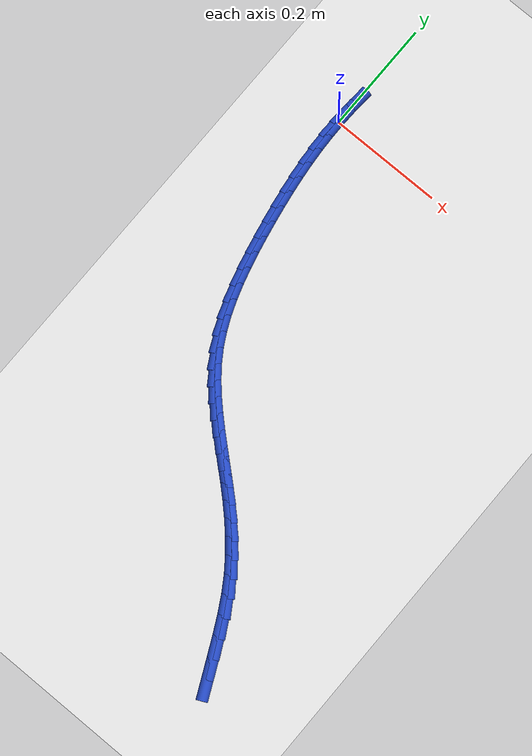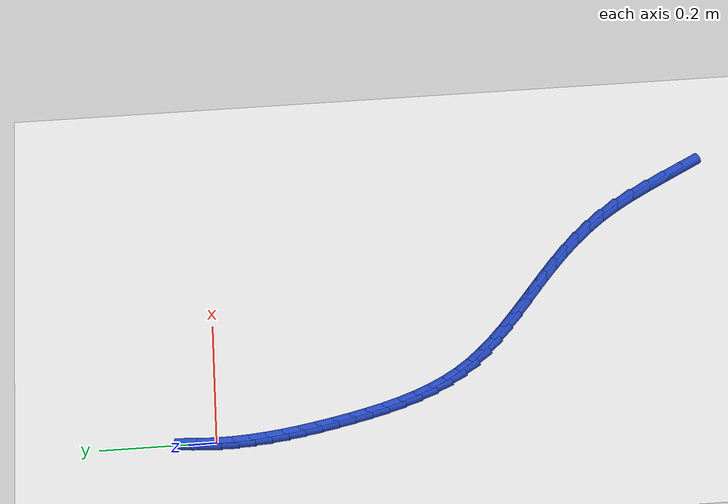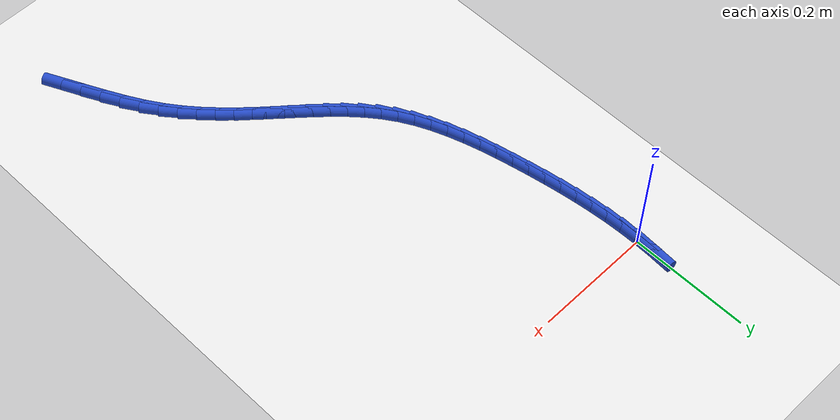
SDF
<sdf version="1.6">
 <world name="default">
  <model name="ground_plane">
   <static>1</static>
   <link name="link">
    <collision name="collision">
     <geometry><plane><normal>0 0 1</normal><size>100 100</size></plane></geometry>
     <surface><friction><ode><mu>100</mu><mu2>50</mu2></ode></friction></surface>
    </collision>
    <visual name="visual">
     <cast_shadows>0</cast_shadows>
     <geometry><plane><normal>0 0 1</normal><size>100 100</size></plane></geometry>
     <material>
      <script><uri>file://media/materials/scripts/gazebo.material</uri><name>Gazebo/WhiteGlow</name></script>
     </material>
    </visual>
   </link>
  </model>
  <model name="line">
   <link name="link_0">
    <pose>-2.6020852139652106e-18 -1.3877787807814457e-17 0.01 0 1.57 1.5410836594543111</pose>
    <collision name="collision">
     <geometry><cylinder><radius>0.01</radius><length>0.08</length></cylinder></geometry>
    </collision>
    <visual name="visual">
     <material>
      <script><name>Gazebo/Blue</name><uri>file://media/materials/scripts/gazebo.material</uri></script>
     </material>
     <geometry><cylinder><radius>0.01</radius><length>0.08</length></cylinder></geometry>
    </visual>
   </link>
   <link name="link_1">
    <pose>0.0008448784195982768 0.028426588691219702 0.01 0 1.57 1.5070297732293532</pose>
    <collision name="collision">
     <geometry><cylinder><radius>0.01</radius><length>0.08</length></cylinder></geometry>
    </collision>
    <visual name="visual">
     <material>
      <script><name>Gazebo/Blue</name><uri>file://media/materials/scripts/gazebo.material</uri></script>
     </material>
     <geometry><cylinder><radius>0.01</radius><length>0.08</length></cylinder></geometry>
    </visual>
   </link>
   <link name="link_257">
    <pose>0.42457362475489957 -0.8352668863654452 0.01 0 1.57 -1.1257410366463538</pose>
    <collision name="collision">
     <geometry><cylinder><radius>0.01</radius><length>0.08</length></cylinder></geometry>
    </collision>
    <visual name="visual">
     <material>
      <script><name>Gazebo/Blue</name><uri>file://media/materials/scripts/gazebo.material</uri></script>
     </material>
     <geometry><cylinder><radius>0.01</radius><length>0.08</length></cylinder></geometry>
    </visual>
   </link>
   <link name="link_258">
    <pose>0.4099756272368853 -0.8046612591156584 0.01 0 1.57 -1.1204709304202711</pose>
    <collision name="collision">
     <geometry><cylinder><radius>0.01</radius><length>0.08</length></cylinder></geometry>
    </collision>
    <visual name="visual">
     <material>
      <script><name>Gazebo/Blue</name><uri>file://media/materials/scripts/gazebo.material</uri></script>
     </material>
     <geometry><cylinder><radius>0.01</radius><length>0.08</length></cylinder></geometry>
    </visual>
   </link>
   <link name="link_259">
    <pose>0.3951386551238968 -0.7739718929973554 0.01 0 1.57 -1.0986591413629496</pose>
    <collision name="collision">
     <geometry><cylinder><radius>0.01</radius><length>0.08</length></cylinder></geometry>
    </collision>
    <visual name="visual">
     <material>
      <script><name>Gazebo/Blue</name><uri>file://media/materials/scripts/gazebo.material</uri></script>
     </material>
     <geometry><cylinder><radius>0.01</radius><length>0.08</length></cylinder></geometry>
    </visual>
   </link>
   <link name="link_260">
    <pose>0.37974494584852514 -0.7438270105221809 0.01 0 1.57 -1.059158122594759</pose>
    <collision name="collision">
     <geometry><cylinder><radius>0.01</radius><length>0.08</length></cylinder></geometry>
    </collision>
    <visual name="visual">
     <material>
      <script><name>Gazebo/Blue</name><uri>file://media/materials/scripts/gazebo.material</uri></script>
     </material>
     <geometry><cylinder><radius>0.01</radius><length>0.08</length></cylinder></geometry>
    </visual>
   </link>
   <link name="link_261">
    <pose>0.36347673684336185 -0.7148548342017805 0.01 0 1.57 -0.9999563781915298</pose>
    <collision name="collision">
     <geometry><cylinder><radius>0.01</radius><length>0.08</length></cylinder></geometry>
    </collision>
    <visual name="visual">
     <material>
      <script><name>Gazebo/Blue</name><uri>file://media/materials/scripts/gazebo.material</uri></script>
     </material>
     <geometry><cylinder><radius>0.01</radius><length>0.08</length></cylinder></geometry>
    </visual>
   </link>
   <link name="link_262">
    <pose>0.34602230000282297 -0.6876737674294692 0.01 0 1.57 -0.9309695407657109</pose>
    <collision name="collision">
     <geometry><cylinder><radius>0.01</radius><length>0.08</length></cylinder></geometry>
    </collision>
    <visual name="visual">
     <material>
      <script><name>Gazebo/Blue</name><uri>file://media/materials/scripts/gazebo.material</uri></script>
     </material>
     <geometry><cylinder><radius>0.01</radius><length>0.08</length></cylinder></geometry>
    </visual>
   </link>
   <link name="link_263">
    <pose>0.32730307725179414 -0.6625228054281551 0.01 0 1.57 -0.8689633555907991</pose>
    <collision name="collision">
     <geometry><cylinder><radius>0.01</radius><length>0.08</length></cylinder></geometry>
    </collision>
    <visual name="visual">
     <material>
      <script><name>Gazebo/Blue</name><uri>file://media/materials/scripts/gazebo.material</uri></script>
     </material>
     <geometry><cylinder><radius>0.01</radius><length>0.08</length></cylinder></geometry>
    </visual>
   </link>
   <link name="link_264">
    <pose>0.30754258787850075 -0.6391494110419286 0.01 0 1.57 -0.8165608871772688</pose>
    <collision name="collision">
     <geometry><cylinder><radius>0.01</radius><length>0.08</length></cylinder></geometry>
    </collision>
    <visual name="visual">
     <material>
      <script><name>Gazebo/Blue</name><uri>file://media/materials/scripts/gazebo.material</uri></script>
     </material>
     <geometry><cylinder><radius>0.01</radius><length>0.08</length></cylinder></geometry>
    </visual>
   </link>
   <link name="link_265">
    <pose>0.2869844573605177 -0.6172683308498464 0.01 0 1.57 -0.7749135758349872</pose>
    <collision name="collision">
     <geometry><cylinder><radius>0.01</radius><length>0.08</length></cylinder></geometry>
    </collision>
    <visual name="visual">
     <material>
      <script><name>Gazebo/Blue</name><uri>file://media/materials/scripts/gazebo.material</uri></script>
     </material>
     <geometry><cylinder><radius>0.01</radius><length>0.08</length></cylinder></geometry>
    </visual>
   </link>
   <link name="link_266">
    <pose>0.2658723111754182 -0.5965943114309642 0.01 0 1.57 -0.7448536788825162</pose>
    <collision name="collision">
     <geometry><cylinder><radius>0.01</radius><length>0.08</length></cylinder></geometry>
    </collision>
    <visual name="visual">
     <material>
      <script><name>Gazebo/Blue</name><uri>file://media/materials/scripts/gazebo.material</uri></script>
     </material>
     <geometry><cylinder><radius>0.01</radius><length>0.08</length></cylinder></geometry>
    </visual>
   </link>
   <link name="link_267">
    <pose>0.24444977480077715 -0.5768420993643388 0.01 0 1.57 -0.7270076422547754</pose>
    <collision name="collision">
     <geometry><cylinder><radius>0.01</radius><length>0.08</length></cylinder></geometry>
    </collision>
    <visual name="visual">
     <material>
      <script><name>Gazebo/Blue</name><uri>file://media/materials/scripts/gazebo.material</uri></script>
     </material>
     <geometry><cylinder><radius>0.01</radius><length>0.08</length></cylinder></geometry>
    </visual>
   </link>
   <link name="link_268">
    <pose>0.2229604737141688 -0.5577264412290273 0.01 0 1.57 -0.72190363139616</pose>
    <collision name="collision">
     <geometry><cylinder><radius>0.01</radius><length>0.08</length></cylinder></geometry>
    </collision>
    <visual name="visual">
     <material>
      <script><name>Gazebo/Blue</name><uri>file://media/materials/scripts/gazebo.material</uri></script>
     </material>
     <geometry><cylinder><radius>0.01</radius><length>0.08</length></cylinder></geometry>
    </visual>
   </link>
   <link name="link_269">
    <pose>0.20164803339316764 -0.5389620836040857 0.01 0 1.57 -0.7300461021298593</pose>
    <collision name="collision">
     <geometry><cylinder><radius>0.01</radius><length>0.08</length></cylinder></geometry>
    </collision>
    <visual name="visual">
     <material>
      <script><name>Gazebo/Blue</name><uri>file://media/materials/scripts/gazebo.material</uri></script>
     </material>
     <geometry><cylinder><radius>0.01</radius><length>0.08</length></cylinder></geometry>
    </visual>
   </link>
   <link name="link_270">
    <pose>0.18075607931534782 -0.5202637730685707 0.01 0 1.57 -0.7519373278348749</pose>
    <collision name="collision">
     <geometry><cylinder><radius>0.01</radius><length>0.08</length></cylinder></geometry>
    </collision>
    <visual name="visual">
     <material>
      <script><name>Gazebo/Blue</name><uri>file://media/materials/scripts/gazebo.material</uri></script>
     </material>
     <geometry><cylinder><radius>0.01</radius><length>0.08</length></cylinder></geometry>
    </visual>
   </link>
   <link name="link_271">
    <pose>0.16052823695828383 -0.5013462562015392 0.01 0 1.57 -0.7880276355708106</pose>
    <collision name="collision">
     <geometry><cylinder><radius>0.01</radius><length>0.08</length></cylinder></geometry>
    </collision>
    <visual name="visual">
     <material>
      <script><name>Gazebo/Blue</name><uri>file://media/materials/scripts/gazebo.material</uri></script>
     </material>
     <geometry><cylinder><radius>0.01</radius><length>0.08</length></cylinder></geometry>
    </visual>
   </link>
   <link name="link_272">
    <pose>0.1412081317995499 -0.4819242795820472 0.01 0 1.57 -0.8385768543556459</pose>
    <collision name="collision">
     <geometry><cylinder><radius>0.01</radius><length>0.08</length></cylinder></geometry>
    </collision>
    <visual name="visual">
     <material>
      <script><name>Gazebo/Blue</name><uri>file://media/materials/scripts/gazebo.material</uri></script>
     </material>
     <geometry><cylinder><radius>0.01</radius><length>0.08</length></cylinder></geometry>
    </visual>
   </link>
   <link name="link_273">
    <pose>0.12303938931672041 -0.4617125897891514 0.01 0 1.57 -0.9034192025196207</pose>
    <collision name="collision">
     <geometry><cylinder><radius>0.01</radius><length>0.08</length></cylinder></geometry>
    </collision>
    <visual name="visual">
     <material>
      <script><name>Gazebo/Blue</name><uri>file://media/materials/scripts/gazebo.material</uri></script>
     </material>
     <geometry><cylinder><radius>0.01</radius><length>0.08</length></cylinder></geometry>
    </visual>
   </link>
   <link name="link_274">
    <pose>0.10626563498736973 -0.44042593340190866 0.01 0 1.57 -0.9816537703855691</pose>
    <collision name="collision">
     <geometry><cylinder><radius>0.01</radius><length>0.08</length></cylinder></geometry>
    </collision>
    <visual name="visual">
     <material>
      <script><name>Gazebo/Blue</name><uri>file://media/materials/scripts/gazebo.material</uri></script>
     </material>
     <geometry><cylinder><radius>0.01</radius><length>0.08</length></cylinder></geometry>
    </visual>
   </link>
   <link name="link_275">
    <pose>0.09113044143499133 -0.4177791209527837 0.01 0 1.57 -1.066473812148742</pose>
    <collision name="collision">
     <geometry><cylinder><radius>0.01</radius><length>0.08</length></cylinder></geometry>
    </collision>
    <visual name="visual">
     <material>
      <script><name>Gazebo/Blue</name><uri>file://media/materials/scripts/gazebo.material</uri></script>
     </material>
     <geometry><cylinder><radius>0.01</radius><length>0.08</length></cylinder></geometry>
    </visual>
   </link>
   <link name="link_276">
    <pose>0.07778476359011786 -0.3935990303311055 0.01 0 1.57 -1.1416606840102625</pose>
    <collision name="collision">
     <geometry><cylinder><radius>0.01</radius><length>0.08</length></cylinder></geometry>
    </collision>
    <visual name="visual">
     <material>
      <script><name>Gazebo/Blue</name><uri>file://media/materials/scripts/gazebo.material</uri></script>
     </material>
     <geometry><cylinder><radius>0.01</radius><length>0.08</length></cylinder></geometry>
    </visual>
   </link>
   <link name="link_277">
    <pose>0.06609647681509509 -0.36805506554594175 0.01 0 1.57 -1.2049954461594778</pose>
    <collision name="collision">
     <geometry><cylinder><radius>0.01</radius><length>0.08</length></cylinder></geometry>
    </collision>
    <visual name="visual">
     <material>
      <script><name>Gazebo/Blue</name><uri>file://media/materials/scripts/gazebo.material</uri></script>
     </material>
     <geometry><cylinder><radius>0.01</radius><length>0.08</length></cylinder></geometry>
    </visual>
   </link>
   <link name="link_278">
    <pose>0.0558795615006329 -0.3413818434920024 0.01 0 1.57 -1.2574830771350543</pose>
    <collision name="collision">
     <geometry><cylinder><radius>0.01</radius><length>0.08</length></cylinder></geometry>
    </collision>
    <visual name="visual">
     <material>
      <script><name>Gazebo/Blue</name><uri>file://media/materials/scripts/gazebo.material</uri></script>
     </material>
     <geometry><cylinder><radius>0.01</radius><length>0.08</length></cylinder></geometry>
    </visual>
   </link>
   <link name="link_279">
    <pose>0.046947998037441104 -0.3138139810639975 0.01 0 1.57 -1.3001405020158263</pose>
    <collision name="collision">
     <geometry><cylinder><radius>0.01</radius><length>0.08</length></cylinder></geometry>
    </collision>
    <visual name="visual">
     <material>
      <script><name>Gazebo/Blue</name><uri>file://media/materials/scripts/gazebo.material</uri></script>
     </material>
     <geometry><cylinder><radius>0.01</radius><length>0.08</length></cylinder></geometry>
    </visual>
   </link>
   <link name="link_280">
    <pose>0.03911576681622976 -0.2855860951566376 0.01 0 1.57 -1.33386160550962</pose>
    <collision name="collision">
     <geometry><cylinder><radius>0.01</radius><length>0.08</length></cylinder></geometry>
    </collision>
    <visual name="visual">
     <material>
      <script><name>Gazebo/Blue</name><uri>file://media/materials/scripts/gazebo.material</uri></script>
     </material>
     <geometry><cylinder><radius>0.01</radius><length>0.08</length></cylinder></geometry>
    </visual>
   </link>
   <link name="link_281">
    <pose>0.03219684822770823 -0.256932802664631 0.01 0 1.57 -1.3593466626051862</pose>
    <collision name="collision">
     <geometry><cylinder><radius>0.01</radius><length>0.08</length></cylinder></geometry>
    </collision>
    <visual name="visual">
     <material>
      <script><name>Gazebo/Blue</name><uri>file://media/materials/scripts/gazebo.material</uri></script>
     </material>
     <geometry><cylinder><radius>0.01</radius><length>0.08</length></cylinder></geometry>
    </visual>
   </link>
   <link name="link_282">
    <pose>0.026005222662586598 -0.2280887204826885 0.01 0 1.57 -1.3773599893416664</pose>
    <collision name="collision">
     <geometry><cylinder><radius>0.01</radius><length>0.08</length></cylinder></geometry>
    </collision>
    <visual name="visual">
     <material>
      <script><name>Gazebo/Blue</name><uri>file://media/materials/scripts/gazebo.material</uri></script>
     </material>
     <geometry><cylinder><radius>0.01</radius><length>0.08</length></cylinder></geometry>
    </visual>
   </link>
   <link name="link_283">
    <pose>0.02036229004674164 -0.1992814405421182 0.01 0 1.57 -1.393644424299507</pose>
    <collision name="collision">
     <geometry><cylinder><radius>0.01</radius><length>0.08</length></cylinder></geometry>
    </collision>
    <visual name="visual">
     <material>
      <script><name>Gazebo/Blue</name><uri>file://media/materials/scripts/gazebo.material</uri></script>
     </material>
     <geometry><cylinder><radius>0.01</radius><length>0.08</length></cylinder></geometry>
    </visual>
   </link>
   <link name="link_284">
    <pose>0.015228693275984015 -0.1706067167620427 0.01 0 1.57 -1.4131757710431743</pose>
    <collision name="collision">
     <geometry><cylinder><radius>0.01</radius><length>0.08</length></cylinder></geometry>
    </collision>
    <visual name="visual">
     <material>
      <script><name>Gazebo/Blue</name><uri>file://media/materials/scripts/gazebo.material</uri></script>
     </material>
     <geometry><cylinder><radius>0.01</radius><length>0.08</length></cylinder></geometry>
    </visual>
   </link>
   <link name="link_285">
    <pose>0.01068882639905084 -0.14204313300973034 0.01 0 1.57 -1.4361622824818352</pose>
    <collision name="collision">
     <geometry><cylinder><radius>0.01</radius><length>0.08</length></cylinder></geometry>
    </collision>
    <visual name="visual">
     <material>
      <script><name>Gazebo/Blue</name><uri>file://media/materials/scripts/gazebo.material</uri></script>
     </material>
     <geometry><cylinder><radius>0.01</radius><length>0.08</length></cylinder></geometry>
    </visual>
   </link>
   <link name="link_286">
    <pose>0.006831391118177785 -0.11356519458047792 0.01 0 1.57 -1.4626157430248847</pose>
    <collision name="collision">
     <geometry><cylinder><radius>0.01</radius><length>0.08</length></cylinder></geometry>
    </collision>
    <visual name="visual">
     <material>
      <script><name>Gazebo/Blue</name><uri>file://media/materials/scripts/gazebo.material</uri></script>
     </material>
     <geometry><cylinder><radius>0.01</radius><length>0.08</length></cylinder></geometry>
    </visual>
   </link>
   <link name="link_287">
    <pose>0.0037450891356005113 -0.08514740676958199 0.01 0 1.57 -1.4925133159398218</pose>
    <collision name="collision">
     <geometry><cylinder><radius>0.01</radius><length>0.08</length></cylinder></geometry>
    </collision>
    <visual name="visual">
     <material>
      <script><name>Gazebo/Blue</name><uri>file://media/materials/scripts/gazebo.material</uri></script>
     </material>
     <geometry><cylinder><radius>0.01</radius><length>0.08</length></cylinder></geometry>
    </visual>
   </link>
   <link name="link_288">
    <pose>0.0015186221535546797 -0.05676427487233928 0.01 0 1.57 -1.5257879192142465</pose>
    <collision name="collision">
     <geometry><cylinder><radius>0.01</radius><length>0.08</length></cylinder></geometry>
    </collision>
    <visual name="visual">
     <material>
      <script><name>Gazebo/Blue</name><uri>file://media/materials/scripts/gazebo.material</uri></script>
     </material>
     <geometry><cylinder><radius>0.01</radius><length>0.08</length></cylinder></geometry>
    </visual>
   </link>
   <link name="link_289">
    <pose>0.00024069187427595926 -0.02839030418404646 0.01 0 1.57 -1.5623185695182222</pose>
    <collision name="collision">
     <geometry><cylinder><radius>0.01</radius><length>0.08</length></cylinder></geometry>
    </collision>
    <visual name="visual">
     <material>
      <script><name>Gazebo/Blue</name><uri>file://media/materials/scripts/gazebo.material</uri></script>
     </material>
     <geometry><cylinder><radius>0.01</radius><length>0.08</length></cylinder></geometry>
    </visual>
   </link>
   <link name="link_290">
    <pose>7.806255641895632e-18 -2.1510571102112408e-16 0.01 0 1.57 1.5396708969954285</pose>
    <collision name="collision">
     <geometry><cylinder><radius>0.01</radius><length>0.08</length></cylinder></geometry>
    </collision>
    <visual name="visual">
     <material>
      <script><name>Gazebo/Blue</name><uri>file://media/materials/scripts/gazebo.material</uri></script>
     </material>
     <geometry><cylinder><radius>0.01</radius><length>0.08</length></cylinder></geometry>
    </visual>
   </link>
  </model>
 </world>
</sdf>
